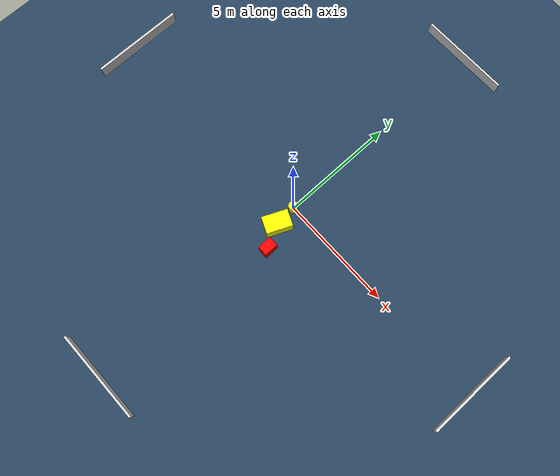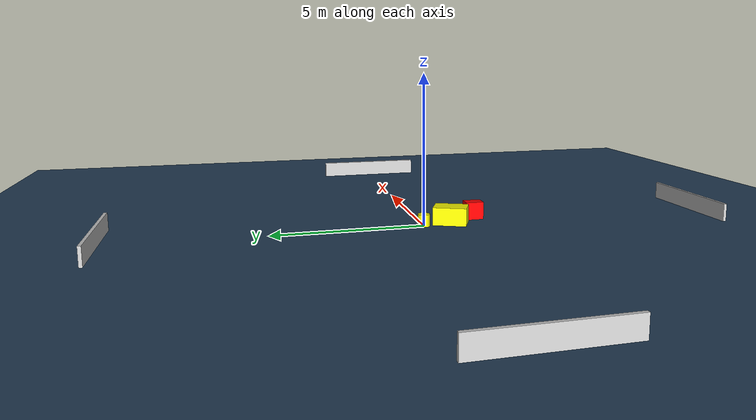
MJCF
<?xml version="1.0" ?>
<mujoco model="generated_environment">
  <option timestep="0.01" integrator="RK4" cone="elliptic"/>
  <default>
    <geom density="1"/>
  </default>
  <asset>
    <texture builtin="gradient" height="3072" name="skybox" rgb1="0.3 0.5 0.7" rgb2="0 0 0" type="skybox" width="512"/>
    <texture builtin="checker" height="300" name="groundplane" rgb1="0.2 0.3 0.4" rgb2="0.1 0.2 0.3" type="2d" width="300"/>
    <material name="groundplane" reflectance="0.2" texrepeat="5 5" texture="groundplane"/>
  </asset>
  <worldbody>
    <light dir="0 0 -1" directional="true" pos="0 0 1.5"/>
    <geom condim="3" friction="0.5 0.005 0.001" material="groundplane" name="floor" pos="0 0 0" size="0 0 0.05" type="plane"/>
    <body name="walls">
      <geom name="wall_1" condim="4" pos="-10.0 0.0 0.3" rgba="0.800000011920929 0.800000011920929 0.800000011920929 1.0" size="0.05 2.0 0.3" type="box"/>
      <geom name="wall_2" condim="4" pos="10.0 0.0 0.3" rgba="0.800000011920929 0.800000011920929 0.800000011920929 1.0" size="0.05 2.0 0.3" type="box"/>
      <geom name="wall_3" condim="4" pos="0.0 -10.0 0.3" rgba="0.800000011920929 0.800000011920929 0.800000011920929 1.0" size="2.0 0.05 0.3" type="box"/>
      <geom name="wall_4" condim="4" pos="0.0 10.0 0.3" rgba="0.800000011920929 0.800000011920929 0.800000011920929 1.0" size="2.0 0.05 0.3" type="box"/>
    </body>
    <body name="robot">
      <joint name="joint_x" type="slide" pos="0 0 0" axis="1 0 0"/>
      <joint name="joint_y" type="slide" pos="0 0 0" axis="0 1 0"/>
      <geom name="robot" type="cylinder" pos="0.0 0.0 0.2" size="0.2 0.2 0.0" mass="5.0" friction="1.0 0.005 0.0001" condim="4" rgba="1.0 1.0 0.0 1.0"/>
    </body>
    <body name="obstacle_1_movable">
      <geom name="obstacle_1_movable" condim="4" pos="0.08805616351992515 -0.9551240623893501 0.3" euler="0 0 246.08119433648272" friction="0.0 0.005 0.001" rgba="1.0 1.0 0.0 1.0" size="0.5574342146380854 0.36835825079359885 0.3" type="box" mass="0.1"/>
      <joint type="free"/>
    </body>
    <body name="obstacle_2_static">
      <geom name="obstacle_2_static" condim="4" pos="0.5948129388260031 -1.9031670280760278 0.3" euler="0 0 270.1616693247707" friction="0.0 0.005 0.001" rgba="1.0 0.0 0.0 1.0" size="0.3053202400294855 0.21795968532951604 0.3" type="box"/>
    </body>
  </worldbody>
  <actuator>
    <motor name="actuator_x" joint="joint_x" gear="1" ctrlrange="-1 1"/>
    <motor name="actuator_y" joint="joint_y" gear="1" ctrlrange="-1 1"/>
  </actuator>
</mujoco>
